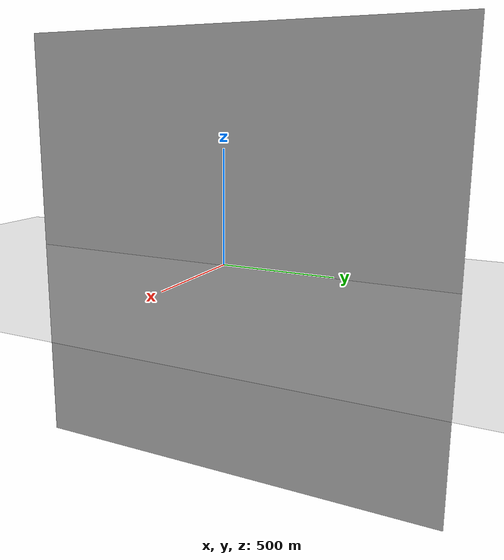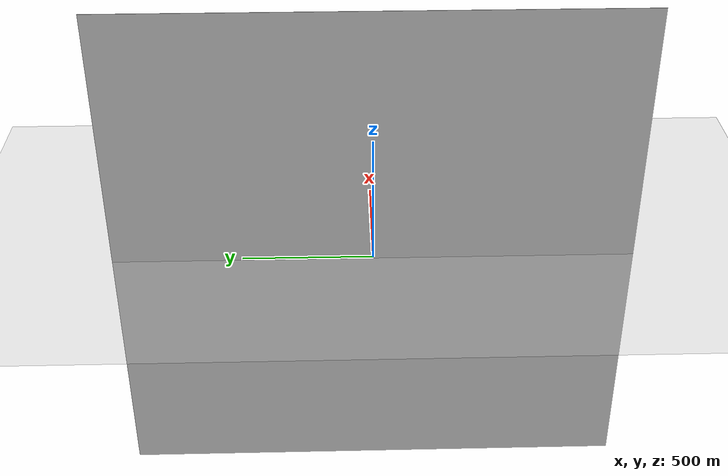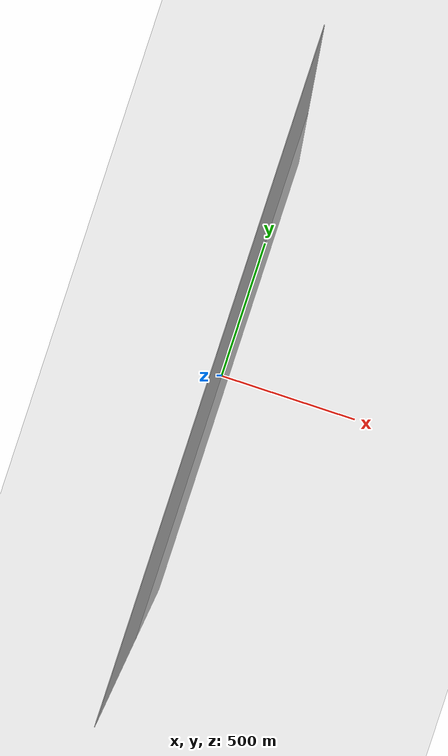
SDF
<sdf version="1.5">
 <world name="default">
  <include><uri>model://sun</uri></include>
  <include><uri>model://ground_plane</uri></include>
  <include><uri>model://table</uri><pose>0 -1.05 0 0 0 0</pose><static>true</static></include>
  <include><uri>model://checkerboard_plane</uri><pose>-1.5 -1 2.3 0 1.57 0</pose><scale>4 4 4</scale></include>
 </world>
</sdf>

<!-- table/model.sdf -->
<sdf version="1.5">
  <model name="table">
    <static>true</static>
    <link name="link">
      <collision name="surface">
        <pose>0 0 1.0 0 0 0</pose>
        <geometry>
          <box>
            <size>1.5 0.8 0.03</size>
          </box>
        </geometry>
        <surface>
          <friction>
            <ode>
              <mu>0.6</mu>
              <mu2>0.6</mu2>
            </ode>
          </friction>
        </surface>
      </collision>
      <visual name="visual1">
        <pose>0 0 1.0 0 0 0</pose>
        <geometry>
          <box>
            <size>1.5 0.8 0.03</size>
          </box>
        </geometry>
        <material>
          <script>
            <uri>model://media/materials/scripts/gazebo.material</uri>
            <name>Gazebo/Wood</name>
          </script>
        </material>
      </visual>
      <collision name="front_left_leg">
        <pose>0.68 0.38 0.5 0 0 0</pose>
        <geometry>
          <cylinder>
            <radius>0.02</radius>
            <length>1.0</length>
          </cylinder>
        </geometry>
      </collision>
      <visual name="front_left_leg">
        <pose>0.68 0.38 0.5 0 0 0</pose>
        <geometry>
          <cylinder>
            <radius>0.02</radius>
            <length>1.0</length>
          </cylinder>
        </geometry>
        <material>
          <script>
            <uri>model://media/materials/scripts/gazebo.material</uri>
            <name>Gazebo/Grey</name>
          </script>
        </material>
      </visual>
      <collision name="front_right_leg">
        <pose>0.68 -0.38 0.5 0 0 0</pose>
        <geometry>
          <cylinder>
            <radius>0.02</radius>
            <length>1.0</length>
          </cylinder>
        </geometry>
      </collision>
      <visual name="front_right_leg">
        <pose>0.68 -0.38 0.5 0 0 0</pose>
        <geometry>
          <cylinder>
            <radius>0.02</radius>
            <length>1.0</length>
          </cylinder>
        </geometry>
        <material>
          <script>
            <uri>model://media/materials/scripts/gazebo.material</uri>
            <name>Gazebo/Grey</name>
          </script>
        </material>
      </visual>
      <collision name="back_right_leg">
        <pose>-0.68 -0.38 0.5 0 0 0</pose>
        <geometry>
          <cylinder>
            <radius>0.02</radius>
            <length>1.0</length>
          </cylinder>
        </geometry>
      </collision>
      <visual name="back_right_leg">
        <pose>-0.68 -0.38 0.5 0 0 0</pose>
        <geometry>
          <cylinder>
            <radius>0.02</radius>
            <length>1.0</length>
          </cylinder>
        </geometry>
        <material>
          <script>
            <uri>model://media/materials/scripts/gazebo.material</uri>
            <name>Gazebo/Grey</name>
          </script>
        </material>
      </visual>
      <collision name="back_left_leg">
        <pose>-0.68 0.38 0.5 0 0 0</pose>
        <geometry>
          <cylinder>
            <radius>0.02</radius>
            <length>1.0</length>
          </cylinder>
        </geometry>
      </collision>
      <visual name="back_left_leg">
        <pose>-0.68 0.38 0.5 0 0 0</pose>
        <geometry>
          <cylinder>
            <radius>0.02</radius>
            <length>1.0</length>
          </cylinder>
        </geometry>
        <material>
          <script>
            <uri>model://media/materials/scripts/gazebo.material</uri>
            <name>Gazebo/Grey</name>
          </script>
        </material>
      </visual>
    </link>
  </model>
</sdf>

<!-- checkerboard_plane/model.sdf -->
<sdf version="1.5">
  <model name="checkerboard_plane">
    <static>true</static>
    <link name="link">
      <collision name="collision">
        <geometry>
          <plane>
            <normal>0 0 1</normal>
            <size>2000 2000</size>
          </plane>
        </geometry>
        <surface>
          <friction>
            <ode>
              <mu>100</mu>
              <mu2>50</mu2>
            </ode>
          </friction>
        </surface>
      </collision>
      <visual name="visual">
        <cast_shadows>false</cast_shadows>
        <geometry>
          <plane>
            <normal>0 0 1</normal>
            <size>2000 2000</size>
          </plane>
        </geometry>
        <material>
          <script>
            <uri>model://checkerboard_plane/materials/scripts</uri>
            <uri>model://checkerboard_plane/materials/textures</uri>
            <name>Checkerboard/Checkerboard</name>
          </script>
        </material>
      </visual>
    </link>
  </model>
</sdf>
